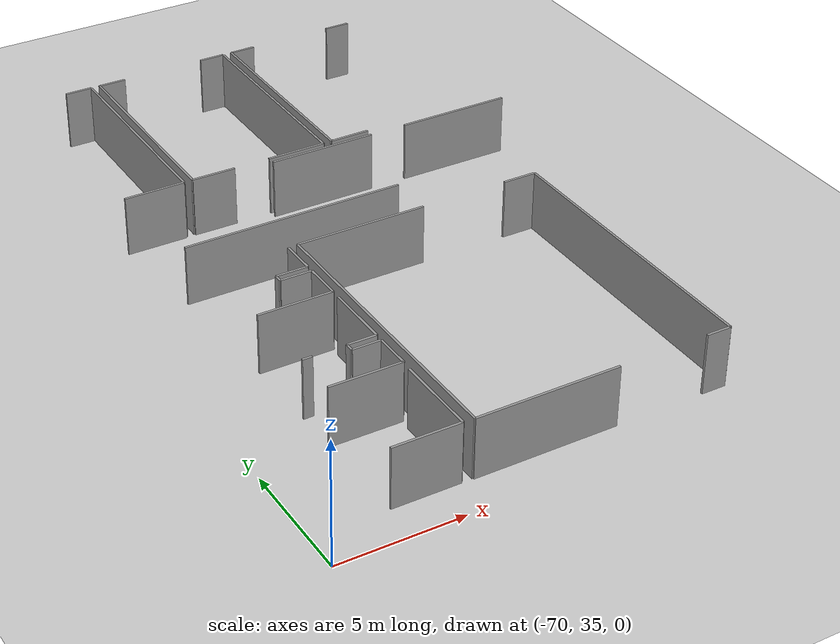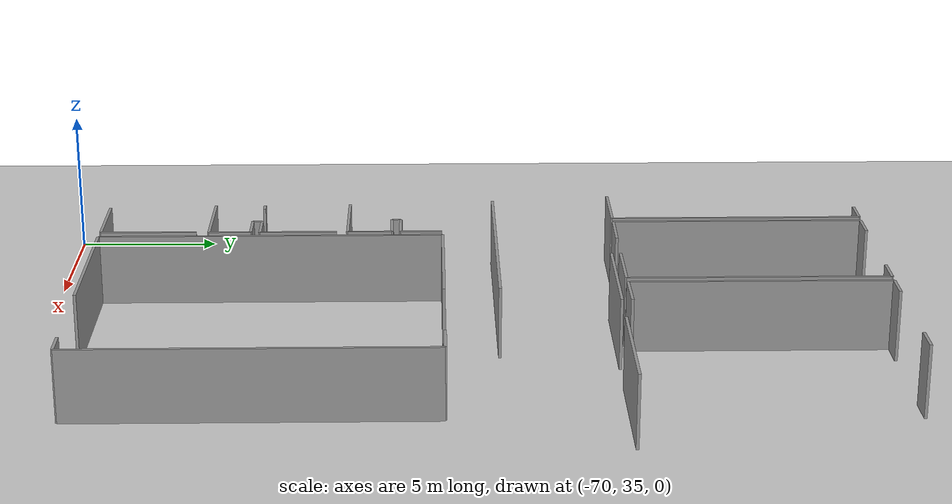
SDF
<sdf version="1.6">
 <world name="default">
  <model name="ground_plane">
   <static>1</static>
   <link name="link">
    <collision name="collision">
     <geometry><plane><normal>0 0 1</normal><size>100 100</size></plane></geometry>
     <surface><friction><ode><mu>100</mu><mu2>50</mu2></ode></friction></surface>
    </collision>
    <visual name="visual">
     <cast_shadows>0</cast_shadows>
     <geometry><plane><normal>0 0 1</normal><size>100 100</size></plane></geometry>
     <material>
      <script><uri>file://media/materials/scripts/gazebo.material</uri><name>Gazebo/Grey</name></script>
     </material>
    </visual>
   </link>
  </model>
  <model name="0510035517_A_40_1_105">
   <static>1</static>
   <link name="Wall_11">
    <collision name="Wall_11_Collision">
     <geometry><box><size>1.1343029425 0.1 2.5</size></box></geometry>
     <pose>0.567151471252 0 1.25 0 0 0</pose>
    </collision>
    <visual name="Wall_11_Visual">
     <pose>0.567151471252 0 1.25 0 0 0</pose>
     <geometry><box><size>1.1343029425 0.1 2.5</size></box></geometry>
     <material>
      <script><uri>file://media/materials/scripts/gazebo.material</uri><name>Gazebo/Grey</name></script>
      <ambient>1 1 1 1</ambient>
     </material>
    </visual>
    <pose>27.9191526404 -0.0170285227757 0 0 0 0.0</pose>
   </link>
   <link name="Wall_12">
    <collision name="Wall_12_Collision">
     <geometry><box><size>8.95674882294 0.1 2.5</size></box></geometry>
     <pose>4.47837441147 0 1.25 0 0 0</pose>
    </collision>
    <visual name="Wall_12_Visual">
     <pose>4.47837441147 0 1.25 0 0 0</pose>
     <geometry><box><size>8.95674882294 0.1 2.5</size></box></geometry>
     <material>
      <script><uri>file://media/materials/scripts/gazebo.material</uri><name>Gazebo/Grey</name></script>
      <ambient>1 1 1 1</ambient>
     </material>
    </visual>
    <pose>29.0534555829 -0.0170285227757 0 0 0 -1.57079632679</pose>
   </link>
   <link name="Wall_13">
    <collision name="Wall_13_Collision">
     <geometry><box><size>2.48921420992 0.1 2.5</size></box></geometry>
     <pose>1.24460710496 0 1.25 0 0 0</pose>
    </collision>
    <visual name="Wall_13_Visual">
     <pose>1.24460710496 0 1.25 0 0 0</pose>
     <geometry><box><size>2.48921420992 0.1 2.5</size></box></geometry>
     <material>
      <script><uri>file://media/materials/scripts/gazebo.material</uri><name>Gazebo/Grey</name></script>
      <ambient>1 1 1 1</ambient>
     </material>
    </visual>
    <pose>29.0534555829 -8.97377734571 0 0 0 3.14159265359</pose>
   </link>
   <link name="Wall_15">
    <collision name="Wall_15_Collision">
     <geometry><box><size>8.92650413323 0.1 2.5</size></box></geometry>
     <pose>4.46325206661 0 1.25 0 0 0</pose>
    </collision>
    <visual name="Wall_15_Visual">
     <pose>4.46325206661 0 1.25 0 0 0</pose>
     <geometry><box><size>8.92650413323 0.1 2.5</size></box></geometry>
     <material>
      <script><uri>file://media/materials/scripts/gazebo.material</uri><name>Gazebo/Grey</name></script>
      <ambient>1 1 1 1</ambient>
     </material>
    </visual>
    <pose>29.4268122987 -8.96284859229 0 0 0 1.57079632679</pose>
   </link>
   <link name="Wall_16">
    <collision name="Wall_16_Collision">
     <geometry><box><size>1.14192765419 0.1 2.5</size></box></geometry>
     <pose>0.570963827097 0 1.25 0 0 0</pose>
    </collision>
    <visual name="Wall_16_Visual">
     <pose>0.570963827097 0 1.25 0 0 0</pose>
     <geometry><box><size>1.14192765419 0.1 2.5</size></box></geometry>
     <material>
      <script><uri>file://media/materials/scripts/gazebo.material</uri><name>Gazebo/Grey</name></script>
      <ambient>1 1 1 1</ambient>
     </material>
    </visual>
    <pose>29.4268122987 -0.0363444590585 0 0 0 0.0</pose>
   </link>
   <link name="Wall_17">
    <collision name="Wall_17_Collision">
     <geometry><box><size>1.08702973002 0.1 2.5</size></box></geometry>
     <pose>0.543514865011 0 1.25 0 0 0</pose>
    </collision>
    <visual name="Wall_17_Visual">
     <pose>0.543514865011 0 1.25 0 0 0</pose>
     <geometry><box><size>1.08702973002 0.1 2.5</size></box></geometry>
     <material>
      <script><uri>file://media/materials/scripts/gazebo.material</uri><name>Gazebo/Grey</name></script>
      <ambient>1 1 1 1</ambient>
     </material>
    </visual>
    <pose>34.1086394337 -0.0363444590585 0 0 0 0.0</pose>
   </link>
   <link name="Wall_18">
    <collision name="Wall_18_Collision">
     <geometry><box><size>8.94505759834 0.1 2.5</size></box></geometry>
     <pose>4.47252879917 0 1.25 0 0 0</pose>
    </collision>
    <visual name="Wall_18_Visual">
     <pose>4.47252879917 0 1.25 0 0 0</pose>
     <geometry><box><size>8.94505759834 0.1 2.5</size></box></geometry>
     <material>
      <script><uri>file://media/materials/scripts/gazebo.material</uri><name>Gazebo/Grey</name></script>
      <ambient>1 1 1 1</ambient>
     </material>
    </visual>
    <pose>35.1956691638 -0.0363444590585 0 0 0 -1.57079632679</pose>
   </link>
   <link name="Wall_19">
    <collision name="Wall_19_Collision">
     <geometry><box><size>2.43558707103 0.1 2.5</size></box></geometry>
     <pose>1.21779353552 0 1.25 0 0 0</pose>
    </collision>
    <visual name="Wall_19_Visual">
     <pose>1.21779353552 0 1.25 0 0 0</pose>
     <geometry><box><size>2.43558707103 0.1 2.5</size></box></geometry>
     <material>
      <script><uri>file://media/materials/scripts/gazebo.material</uri><name>Gazebo/Grey</name></script>
      <ambient>1 1 1 1</ambient>
     </material>
    </visual>
    <pose>35.1956691638 -8.9814020574 0 0 0 3.14159265359</pose>
   </link>
   <link name="Wall_20">
    <collision name="Wall_20_Collision">
     <geometry><box><size>1.81579280115 0.1 2.5</size></box></geometry>
     <pose>0.907896400576 0 1.25 0 0 0</pose>
    </collision>
    <visual name="Wall_20_Visual">
     <pose>0.907896400576 0 1.25 0 0 0</pose>
     <geometry><box><size>1.81579280115 0.1 2.5</size></box></geometry>
     <material>
      <script><uri>file://media/materials/scripts/gazebo.material</uri><name>Gazebo/Grey</name></script>
      <ambient>1 1 1 1</ambient>
     </material>
    </visual>
    <pose>31.2425103092 -8.9814020574 0 0 0 3.13137464416</pose>
   </link>
   <link name="Wall_21">
    <collision name="Wall_21_Collision">
     <geometry><box><size>8.92650413323 0.1 2.5</size></box></geometry>
     <pose>4.46325206661 0 1.25 0 0 0</pose>
    </collision>
    <visual name="Wall_21_Visual">
     <pose>4.46325206661 0 1.25 0 0 0</pose>
     <geometry><box><size>8.92650413323 0.1 2.5</size></box></geometry>
     <material>
      <script><uri>file://media/materials/scripts/gazebo.material</uri><name>Gazebo/Grey</name></script>
      <ambient>1 1 1 1</ambient>
     </material>
    </visual>
    <pose>35.5809712612 -8.96513600579 0 0 0 1.57079632679</pose>
   </link>
   <link name="Wall_22">
    <collision name="Wall_22_Collision">
     <geometry><box><size>1.06822210785 0.1 2.5</size></box></geometry>
     <pose>0.534111053926 0 1.25 0 0 0</pose>
    </collision>
    <visual name="Wall_22_Visual">
     <pose>0.534111053926 0 1.25 0 0 0</pose>
     <geometry><box><size>1.06822210785 0.1 2.5</size></box></geometry>
     <material>
      <script><uri>file://media/materials/scripts/gazebo.material</uri><name>Gazebo/Grey</name></script>
      <ambient>1 1 1 1</ambient>
     </material>
    </visual>
    <pose>35.5809712612 -0.0386318725657 0 0 0 0.0</pose>
   </link>
   <link name="Wall_23">
    <collision name="Wall_23_Collision">
     <geometry><box><size>1.06517222318 0.1 2.5</size></box></geometry>
     <pose>0.532586111588 0 1.25 0 0 0</pose>
    </collision>
    <visual name="Wall_23_Visual">
     <pose>0.532586111588 0 1.25 0 0 0</pose>
     <geometry><box><size>1.06517222318 0.1 2.5</size></box></geometry>
     <material>
      <script><uri>file://media/materials/scripts/gazebo.material</uri><name>Gazebo/Grey</name></script>
      <ambient>1 1 1 1</ambient>
     </material>
    </visual>
    <pose>40.2544112134 -0.0386318725657 0 0 0 0.0</pose>
   </link>
   <link name="Wall_26">
    <collision name="Wall_26_Collision">
     <geometry><box><size>1.66097098572 0.1 2.5</size></box></geometry>
     <pose>0.830485492859 0 1.25 0 0 0</pose>
    </collision>
    <visual name="Wall_26_Visual">
     <pose>0.830485492859 0 1.25 0 0 0</pose>
     <geometry><box><size>1.66097098572 0.1 2.5</size></box></geometry>
     <material>
      <script><uri>file://media/materials/scripts/gazebo.material</uri><name>Gazebo/Grey</name></script>
      <ambient>1 1 1 1</ambient>
     </material>
    </visual>
    <pose>37.2418876245 -8.95166568181 0 0 0 -3.13348265542</pose>
   </link>
   <link name="Wall_59">
    <collision name="Wall_59_Collision">
     <geometry><box><size>12.168277387 0.1 2.5</size></box></geometry>
     <pose>6.08413869351 0 1.25 0 0 0</pose>
    </collision>
    <visual name="Wall_59_Visual">
     <pose>6.08413869351 0 1.25 0 0 0</pose>
     <geometry><box><size>12.168277387 0.1 2.5</size></box></geometry>
     <material>
      <script><uri>file://media/materials/scripts/gazebo.material</uri><name>Gazebo/Grey</name></script>
      <ambient>1 1 1 1</ambient>
     </material>
    </visual>
    <pose>30.7494456199 -27.2850307848 0 0 0 1.57079632679</pose>
   </link>
   <link name="Wall_60">
    <collision name="Wall_60_Collision">
     <geometry><box><size>5.40159991867 0.1 2.5</size></box></geometry>
     <pose>2.70079995933 0 1.25 0 0 0</pose>
    </collision>
    <visual name="Wall_60_Visual">
     <pose>2.70079995933 0 1.25 0 0 0</pose>
     <geometry><box><size>5.40159991867 0.1 2.5</size></box></geometry>
     <material>
      <script><uri>file://media/materials/scripts/gazebo.material</uri><name>Gazebo/Grey</name></script>
      <ambient>1 1 1 1</ambient>
     </material>
    </visual>
    <pose>30.7494456199 -15.1167533978 0 0 0 0.0</pose>
   </link>
   <link name="Wall_61">
    <collision name="Wall_61_Collision">
     <geometry><box><size>1.39862628111 0.1 2.5</size></box></geometry>
     <pose>0.699313140555 0 1.25 0 0 0</pose>
    </collision>
    <visual name="Wall_61_Visual">
     <pose>0.699313140555 0 1.25 0 0 0</pose>
     <geometry><box><size>1.39862628111 0.1 2.5</size></box></geometry>
     <material>
      <script><uri>file://media/materials/scripts/gazebo.material</uri><name>Gazebo/Grey</name></script>
      <ambient>1 1 1 1</ambient>
     </material>
    </visual>
    <pose>39.8119237783 -15.1167533978 0 0 0 0.0</pose>
   </link>
   <link name="Wall_62">
    <collision name="Wall_62_Collision">
     <geometry><box><size>12.1540445919 0.1 2.5</size></box></geometry>
     <pose>6.07702229593 0 1.25 0 0 0</pose>
    </collision>
    <visual name="Wall_62_Visual">
     <pose>6.07702229593 0 1.25 0 0 0</pose>
     <geometry><box><size>12.1540445919 0.1 2.5</size></box></geometry>
     <material>
      <script><uri>file://media/materials/scripts/gazebo.material</uri><name>Gazebo/Grey</name></script>
      <ambient>1 1 1 1</ambient>
     </material>
    </visual>
    <pose>41.2105500594 -15.1167533978 0 0 0 -1.57079632679</pose>
   </link>
   <link name="Wall_63">
    <collision name="Wall_63_Collision">
     <geometry><box><size>0.998074760298 0.1 2.5</size></box></geometry>
     <pose>0.499037380149 0 1.25 0 0 0</pose>
    </collision>
    <visual name="Wall_63_Visual">
     <pose>0.499037380149 0 1.25 0 0 0</pose>
     <geometry><box><size>0.998074760298 0.1 2.5</size></box></geometry>
     <material>
      <script><uri>file://media/materials/scripts/gazebo.material</uri><name>Gazebo/Grey</name></script>
      <ambient>1 1 1 1</ambient>
     </material>
    </visual>
    <pose>41.2105500594 -27.2707979896 0 0 0 3.14159265359</pose>
   </link>
   <link name="Wall_64">
    <collision name="Wall_64_Collision">
     <geometry><box><size>5.80318552129 0.1 2.5</size></box></geometry>
     <pose>2.90159276065 0 1.25 0 0 0</pose>
    </collision>
    <visual name="Wall_64_Visual">
     <pose>2.90159276065 0 1.25 0 0 0</pose>
     <geometry><box><size>5.80318552129 0.1 2.5</size></box></geometry>
     <material>
      <script><uri>file://media/materials/scripts/gazebo.material</uri><name>Gazebo/Grey</name></script>
      <ambient>1 1 1 1</ambient>
     </material>
    </visual>
    <pose>36.5526136876 -27.2707979896 0 0 0 -3.13914006796</pose>
   </link>
   <link name="Wall_107">
    <collision name="Wall_107_Collision">
     <geometry><box><size>4.44673185795 0.1 2.5</size></box></geometry>
     <pose>2.22336592898 0 1.25 0 0 0</pose>
    </collision>
    <visual name="Wall_107_Visual">
     <pose>2.22336592898 0 1.25 0 0 0</pose>
     <geometry><box><size>4.44673185795 0.1 2.5</size></box></geometry>
     <material>
      <script><uri>file://media/materials/scripts/gazebo.material</uri><name>Gazebo/Grey</name></script>
      <ambient>1 1 1 1</ambient>
     </material>
    </visual>
    <pose>32.7799063431 -9.2975734355 0 0 0 0.0</pose>
   </link>
   <link name="Wall_108">
    <collision name="Wall_108_Collision">
     <geometry><box><size>4.69173926028 0.1 2.5</size></box></geometry>
     <pose>2.34586963014 0 1.25 0 0 0</pose>
    </collision>
    <visual name="Wall_108_Visual">
     <pose>2.34586963014 0 1.25 0 0 0</pose>
     <geometry><box><size>4.69173926028 0.1 2.5</size></box></geometry>
     <material>
      <script><uri>file://media/materials/scripts/gazebo.material</uri><name>Gazebo/Grey</name></script>
      <ambient>1 1 1 1</ambient>
     </material>
    </visual>
    <pose>38.7795378154 -9.2975734355 0 0 0 0.0</pose>
   </link>
   <link name="Wall_121">
    <collision name="Wall_121_Collision">
     <geometry><box><size>9.08535229345 0.1 2.5</size></box></geometry>
     <pose>4.54267614672 0 1.25 0 0 0</pose>
    </collision>
    <visual name="Wall_121_Visual">
     <pose>4.54267614672 0 1.25 0 0 0</pose>
     <geometry><box><size>9.08535229345 0.1 2.5</size></box></geometry>
     <material>
      <script><uri>file://media/materials/scripts/gazebo.material</uri><name>Gazebo/Grey</name></script>
      <ambient>1 1 1 1</ambient>
     </material>
    </visual>
    <pose>36.1385918428 -13.2530197035 0 0 0 3.14159265359</pose>
   </link>
   <link name="Wall_129">
    <collision name="Wall_129_Collision">
     <geometry><box><size>1.46953609983 0.1 2.5</size></box></geometry>
     <pose>0.734768049916 0 1.25 0 0 0</pose>
    </collision>
    <visual name="Wall_129_Visual">
     <pose>0.734768049916 0 1.25 0 0 0</pose>
     <geometry><box><size>1.46953609983 0.1 2.5</size></box></geometry>
     <material>
      <script><uri>file://media/materials/scripts/gazebo.material</uri><name>Gazebo/Grey</name></script>
      <ambient>1 1 1 1</ambient>
     </material>
    </visual>
    <pose>30.3555021826 -15.1414066322 0 0 0 -1.57079632679</pose>
   </link>
   <link name="Wall_130">
    <collision name="Wall_130_Collision">
     <geometry><box><size>1.28908458982 0.1 2.5</size></box></geometry>
     <pose>0.644542294911 0 1.25 0 0 0</pose>
    </collision>
    <visual name="Wall_130_Visual">
     <pose>0.644542294911 0 1.25 0 0 0</pose>
     <geometry><box><size>1.28908458982 0.1 2.5</size></box></geometry>
     <material>
      <script><uri>file://media/materials/scripts/gazebo.material</uri><name>Gazebo/Grey</name></script>
      <ambient>1 1 1 1</ambient>
     </material>
    </visual>
    <pose>30.3555021826 -16.6109427321 0 0 0 3.14159265359</pose>
   </link>
   <link name="Wall_131">
    <collision name="Wall_131_Collision">
     <geometry><box><size>0.316679692216 0.1 2.5</size></box></geometry>
     <pose>0.158339846108 0 1.25 0 0 0</pose>
    </collision>
    <visual name="Wall_131_Visual">
     <pose>0.158339846108 0 1.25 0 0 0</pose>
     <geometry><box><size>0.316679692216 0.1 2.5</size></box></geometry>
     <material>
      <script><uri>file://media/materials/scripts/gazebo.material</uri><name>Gazebo/Grey</name></script>
      <ambient>1 1 1 1</ambient>
     </material>
    </visual>
    <pose>29.0664175928 -16.6109427321 0 0 0 -1.57079632679</pose>
   </link>
   <link name="Wall_132">
    <collision name="Wall_132_Collision">
     <geometry><box><size>1.28908458982 0.1 2.5</size></box></geometry>
     <pose>0.644542294911 0 1.25 0 0 0</pose>
    </collision>
    <visual name="Wall_132_Visual">
     <pose>0.644542294911 0 1.25 0 0 0</pose>
     <geometry><box><size>1.28908458982 0.1 2.5</size></box></geometry>
     <material>
      <script><uri>file://media/materials/scripts/gazebo.material</uri><name>Gazebo/Grey</name></script>
      <ambient>1 1 1 1</ambient>
     </material>
    </visual>
    <pose>29.0664175928 -16.9276224243 0 0 0 0.0</pose>
   </link>
   <link name="Wall_133">
    <collision name="Wall_133_Collision">
     <geometry><box><size>1.56255758246 0.1 2.5</size></box></geometry>
     <pose>0.781278791229 0 1.25 0 0 0</pose>
    </collision>
    <visual name="Wall_133_Visual">
     <pose>0.781278791229 0 1.25 0 0 0</pose>
     <geometry><box><size>1.56255758246 0.1 2.5</size></box></geometry>
     <material>
      <script><uri>file://media/materials/scripts/gazebo.material</uri><name>Gazebo/Grey</name></script>
      <ambient>1 1 1 1</ambient>
     </material>
    </visual>
    <pose>30.3555021826 -16.9276224243 0 0 0 -1.57079632679</pose>
   </link>
   <link name="Wall_134">
    <collision name="Wall_134_Collision">
     <geometry><box><size>3.01608178774 0.1 2.5</size></box></geometry>
     <pose>1.50804089387 0 1.25 0 0 0</pose>
    </collision>
    <visual name="Wall_134_Visual">
     <pose>1.50804089387 0 1.25 0 0 0</pose>
     <geometry><box><size>3.01608178774 0.1 2.5</size></box></geometry>
     <material>
      <script><uri>file://media/materials/scripts/gazebo.material</uri><name>Gazebo/Grey</name></script>
      <ambient>1 1 1 1</ambient>
     </material>
    </visual>
    <pose>30.3555021826 -18.4901800067 0 0 0 3.14159265359</pose>
   </link>
   <link name="Wall_144">
    <collision name="Wall_144_Collision">
     <geometry><box><size>0.399026578474 0.1 2.5</size></box></geometry>
     <pose>0.199513289237 0 1.25 0 0 0</pose>
    </collision>
    <visual name="Wall_144_Visual">
     <pose>0.199513289237 0 1.25 0 0 0</pose>
     <geometry><box><size>0.399026578474 0.1 2.5</size></box></geometry>
     <material>
      <script><uri>file://media/materials/scripts/gazebo.material</uri><name>Gazebo/Grey</name></script>
      <ambient>1 1 1 1</ambient>
     </material>
    </visual>
    <pose>27.8284185713 -21.6107203446 0 0 0 3.14159265359</pose>
   </link>
   <link name="Wall_148">
    <collision name="Wall_148_Collision">
     <geometry><box><size>2.72125960237 0.1 2.5</size></box></geometry>
     <pose>1.36062980119 0 1.25 0 0 0</pose>
    </collision>
    <visual name="Wall_148_Visual">
     <pose>1.36062980119 0 1.25 0 0 0</pose>
     <geometry><box><size>2.72125960237 0.1 2.5</size></box></geometry>
     <material>
      <script><uri>file://media/materials/scripts/gazebo.material</uri><name>Gazebo/Grey</name></script>
      <ambient>1 1 1 1</ambient>
     </material>
    </visual>
    <pose>30.3539772402 -18.8833609729 0 0 0 -1.57079632679</pose>
   </link>
   <link name="Wall_149">
    <collision name="Wall_149_Collision">
     <geometry><box><size>1.17776379914 0.1 2.5</size></box></geometry>
     <pose>0.58888189957 0 1.25 0 0 0</pose>
    </collision>
    <visual name="Wall_149_Visual">
     <pose>0.58888189957 0 1.25 0 0 0</pose>
     <geometry><box><size>1.17776379914 0.1 2.5</size></box></geometry>
     <material>
      <script><uri>file://media/materials/scripts/gazebo.material</uri><name>Gazebo/Grey</name></script>
      <ambient>1 1 1 1</ambient>
     </material>
    </visual>
    <pose>30.3539772402 -21.6046205753 0 0 0 3.14159265359</pose>
   </link>
   <link name="Wall_150">
    <collision name="Wall_150_Collision">
     <geometry><box><size>0.332183272653 0.1 2.5</size></box></geometry>
     <pose>0.166091636327 0 1.25 0 0 0</pose>
    </collision>
    <visual name="Wall_150_Visual">
     <pose>0.166091636327 0 1.25 0 0 0</pose>
     <geometry><box><size>0.332183272653 0.1 2.5</size></box></geometry>
     <material>
      <script><uri>file://media/materials/scripts/gazebo.material</uri><name>Gazebo/Grey</name></script>
      <ambient>1 1 1 1</ambient>
     </material>
    </visual>
    <pose>29.1762134411 -21.6046205753 0 0 0 -1.57079632679</pose>
   </link>
   <link name="Wall_151">
    <collision name="Wall_151_Collision">
     <geometry><box><size>1.16327684693 0.1 2.5</size></box></geometry>
     <pose>0.581638423464 0 1.25 0 0 0</pose>
    </collision>
    <visual name="Wall_151_Visual">
     <pose>0.581638423464 0 1.25 0 0 0</pose>
     <geometry><box><size>1.16327684693 0.1 2.5</size></box></geometry>
     <material>
      <script><uri>file://media/materials/scripts/gazebo.material</uri><name>Gazebo/Grey</name></script>
      <ambient>1 1 1 1</ambient>
     </material>
    </visual>
    <pose>29.1762134411 -21.9368038479 0 0 0 0.0</pose>
   </link>
   <link name="Wall_152">
    <collision name="Wall_152_Collision">
     <geometry><box><size>1.47970238209 0.1 2.5</size></box></geometry>
     <pose>0.739851191044 0 1.25 0 0 0</pose>
    </collision>
    <visual name="Wall_152_Visual">
     <pose>0.739851191044 0 1.25 0 0 0</pose>
     <geometry><box><size>1.47970238209 0.1 2.5</size></box></geometry>
     <material>
      <script><uri>file://media/materials/scripts/gazebo.material</uri><name>Gazebo/Grey</name></script>
      <ambient>1 1 1 1</ambient>
     </material>
    </visual>
    <pose>30.339490288 -21.9368038479 0 0 0 -1.57079632679</pose>
   </link>
   <link name="Wall_153">
    <collision name="Wall_153_Collision">
     <geometry><box><size>2.91747470618 0.1 2.5</size></box></geometry>
     <pose>1.45873735309 0 1.25 0 0 0</pose>
    </collision>
    <visual name="Wall_153_Visual">
     <pose>1.45873735309 0 1.25 0 0 0</pose>
     <geometry><box><size>2.91747470618 0.1 2.5</size></box></geometry>
     <material>
      <script><uri>file://media/materials/scripts/gazebo.material</uri><name>Gazebo/Grey</name></script>
      <ambient>1 1 1 1</ambient>
     </material>
    </visual>
    <pose>30.339490288 -23.41650623 0 0 0 3.13958899742</pose>
   </link>
   <link name="Wall_155">
    <collision name="Wall_155_Collision">
     <geometry><box><size>3.39553827288 0.1 2.5</size></box></geometry>
     <pose>1.69776913644 0 1.25 0 0 0</pose>
    </collision>
    <visual name="Wall_155_Visual">
     <pose>1.69776913644 0 1.25 0 0 0</pose>
     <geometry><box><size>3.39553827288 0.1 2.5</size></box></geometry>
     <material>
      <script><uri>file://media/materials/scripts/gazebo.material</uri><name>Gazebo/Grey</name></script>
      <ambient>1 1 1 1</ambient>
     </material>
    </visual>
    <pose>30.303399986 -23.8587395081 0 0 0 -1.57079632679</pose>
   </link>
   <link name="Wall_156">
    <collision name="Wall_156_Collision">
     <geometry><box><size>2.71668477536 0.1 2.5</size></box></geometry>
     <pose>1.35834238768 0 1.25 0 0 0</pose>
    </collision>
    <visual name="Wall_156_Visual">
     <pose>1.35834238768 0 1.25 0 0 0</pose>
     <geometry><box><size>2.71668477536 0.1 2.5</size></box></geometry>
     <material>
      <script><uri>file://media/materials/scripts/gazebo.material</uri><name>Gazebo/Grey</name></script>
      <ambient>1 1 1 1</ambient>
     </material>
    </visual>
    <pose>30.303399986 -27.254277781 0 0 0 3.14159265359</pose>
   </link>
   <pose>-94.6 63.7835382475 0 0 0 0</pose>
  </model>
 </world>
</sdf>
